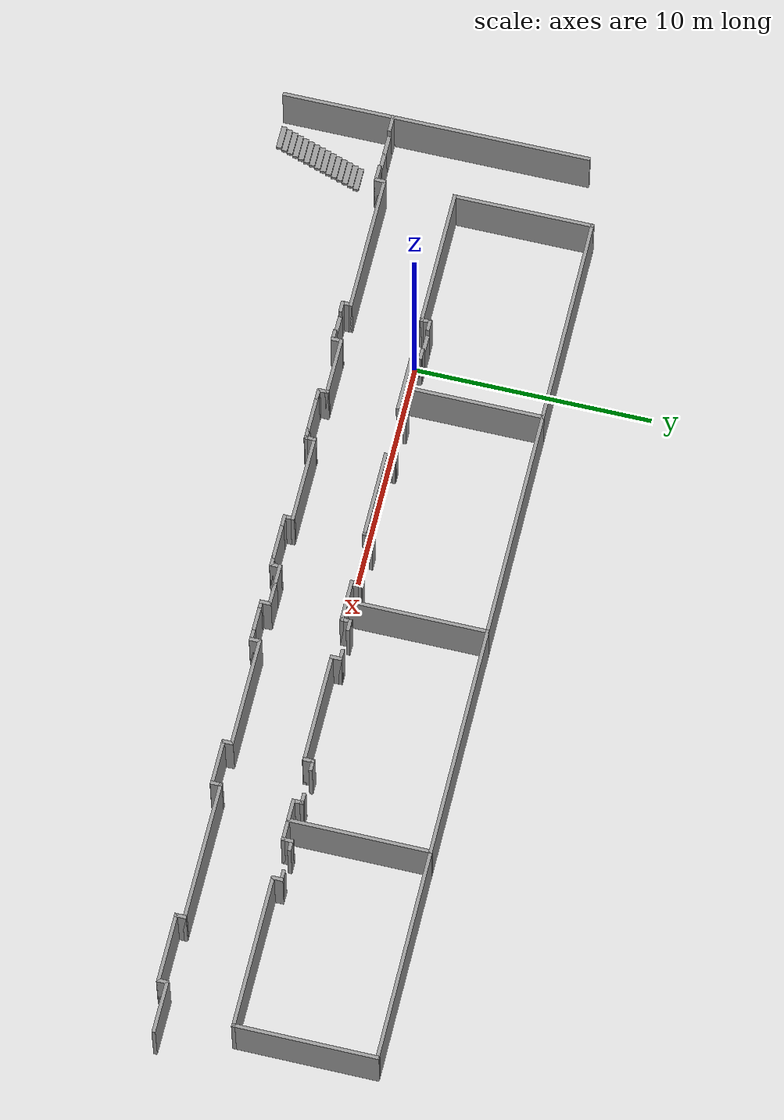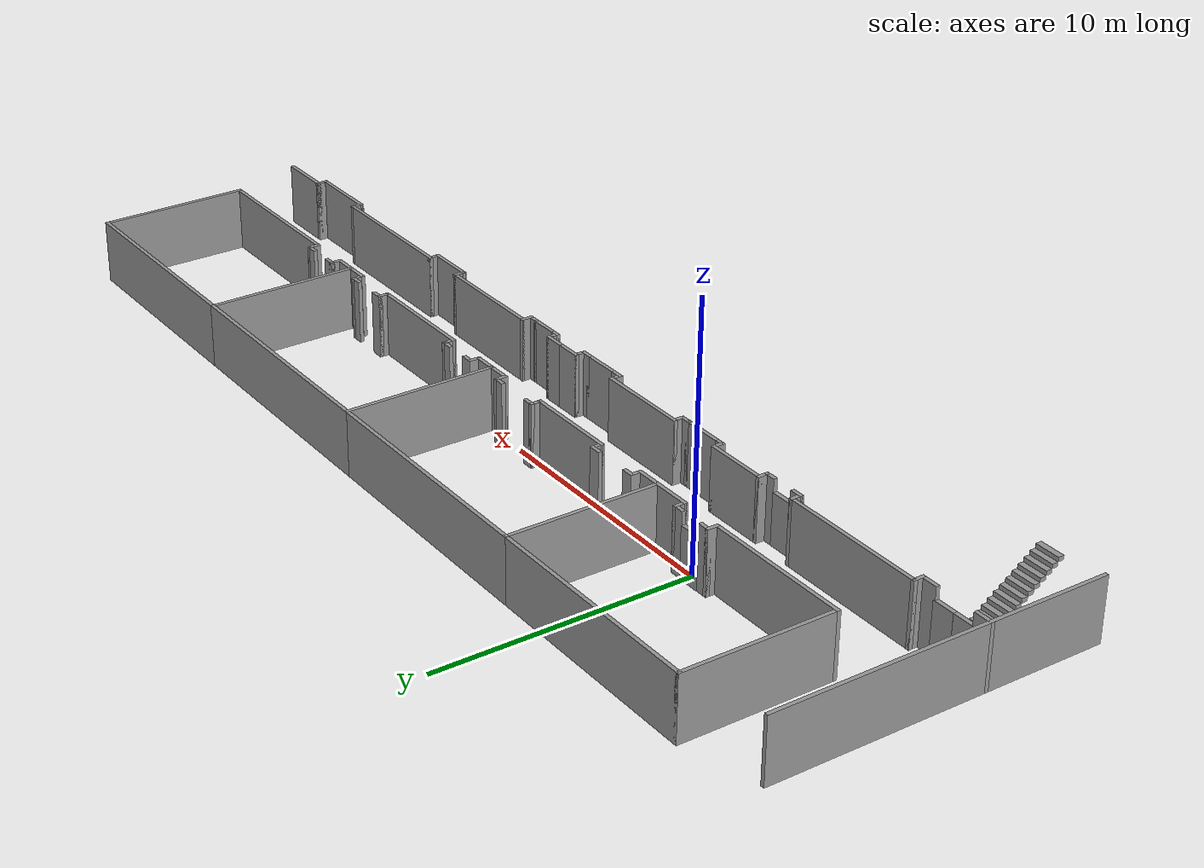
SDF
<sdf version="1.6">
 <model name="corridor">
  <pose>10.825 -1.075 0 0 -0 0</pose>
  <link name="Door_1">
   <collision name="Door_1_Collision">
    <geometry><box><size>0.9 0.17 2</size></box></geometry>
    <pose>0 0 1 0 -0 0</pose>
   </collision>
   <visual name="Door_1_Visual">
    <pose>0 0 1 0 -0 0</pose>
    <geometry><box><size>0.9 0.17 2</size></box></geometry>
    <material>
     <script><uri>file://media/materials/scripts/gazebo.material</uri><name>Gazebo/Grey</name></script>
    </material>
   </visual>
   <pose>-18.8694 -2.273 0 0 -0 0</pose>
  </link>
  <link name="Door_4">
   <collision name="Door_4_Collision">
    <geometry><box><size>0.9 0.17 2</size></box></geometry>
    <pose>0 0 1 0 -0 0</pose>
   </collision>
   <visual name="Door_4_Visual">
    <pose>0 0 1 0 -0 0</pose>
    <geometry><box><size>0.9 0.17 2</size></box></geometry>
    <material>
     <script><uri>file://media/materials/scripts/gazebo.material</uri><name>Gazebo/Grey</name></script>
    </material>
   </visual>
   <pose>-11.125 1.425 0 0 -0 3.14042</pose>
  </link>
  <link name="Door_6">
   <collision name="Door_6_Collision">
    <geometry><box><size>0.9 0.17 2</size></box></geometry>
    <pose>0 0 1 0 -0 0</pose>
   </collision>
   <visual name="Door_6_Visual">
    <pose>0 0 1 0 -0 0</pose>
    <geometry><box><size>0.9 0.17 2</size></box></geometry>
    <material>
     <script><uri>file://media/materials/scripts/gazebo.material</uri><name>Gazebo/Grey</name></script>
    </material>
   </visual>
   <pose>-19.7205 -2.27816 0 0 -0 0</pose>
  </link>
  <link name="Door_7">
   <collision name="Door_7_Collision">
    <geometry><box><size>0.9 0.17 2</size></box></geometry>
    <pose>0 0 1 0 -0 0</pose>
   </collision>
   <visual name="Door_7_Visual">
    <pose>0 0 1 0 -0 0</pose>
    <geometry><box><size>0.9 0.17 2</size></box></geometry>
    <material>
     <script><uri>file://media/materials/scripts/gazebo.material</uri><name>Gazebo/Grey</name></script>
    </material>
   </visual>
   <pose>-11.125 -2.279 0 0 -0 0</pose>
  </link>
  <link name="Stairs_1">
   <visual name="Stairs_1_Visual_0">
    <pose>-18.825 -3.29167 0.083333 0 -0 0</pose>
    <geometry><box><size>1 0.233333 0.166667</size></box></geometry>
    <material>
     <script><uri>file://media/materials/scripts/gazebo.material</uri><name>Gazebo/Grey</name></script>
     <ambient>1 1 1 1</ambient>
    </material>
    <meta><layer>0</layer></meta>
   </visual>
   <collision name="Stairs_1_Collision_0">
    <geometry><box><size>1 0.233333 0.166667</size></box></geometry>
    <pose>-18.825 -3.29167 0.083333 0 -0 0</pose>
   </collision>
   <visual name="Stairs_1_Visual_1">
    <pose>-18.825 -3.525 0.25 0 -0 0</pose>
    <geometry><box><size>1 0.233333 0.166667</size></box></geometry>
    <material>
     <script><uri>file://media/materials/scripts/gazebo.material</uri><name>Gazebo/Grey</name></script>
     <ambient>1 1 1 1</ambient>
    </material>
    <meta><layer>0</layer></meta>
   </visual>
   <collision name="Stairs_1_Collision_1">
    <geometry><box><size>1 0.233333 0.166667</size></box></geometry>
    <pose>-18.825 -3.525 0.25 0 -0 0</pose>
   </collision>
   <visual name="Stairs_1_Visual_2">
    <pose>-18.825 -3.75833 0.416667 0 -0 0</pose>
    <geometry><box><size>1 0.233333 0.166667</size></box></geometry>
    <material>
     <script><uri>file://media/materials/scripts/gazebo.material</uri><name>Gazebo/Grey</name></script>
     <ambient>1 1 1 1</ambient>
    </material>
    <meta><layer>0</layer></meta>
   </visual>
   <collision name="Stairs_1_Collision_2">
    <geometry><box><size>1 0.233333 0.166667</size></box></geometry>
    <pose>-18.825 -3.75833 0.416667 0 -0 0</pose>
   </collision>
   <visual name="Stairs_1_Visual_3">
    <pose>-18.825 -3.99167 0.583333 0 -0 0</pose>
    <geometry><box><size>1 0.233333 0.166667</size></box></geometry>
    <material>
     <script><uri>file://media/materials/scripts/gazebo.material</uri><name>Gazebo/Grey</name></script>
     <ambient>1 1 1 1</ambient>
    </material>
    <meta><layer>0</layer></meta>
   </visual>
   <collision name="Stairs_1_Collision_3">
    <geometry><box><size>1 0.233333 0.166667</size></box></geometry>
    <pose>-18.825 -3.99167 0.583333 0 -0 0</pose>
   </collision>
   <visual name="Stairs_1_Visual_4">
    <pose>-18.825 -4.225 0.75 0 -0 0</pose>
    <geometry><box><size>1 0.233333 0.166667</size></box></geometry>
    <material>
     <script><uri>file://media/materials/scripts/gazebo.material</uri><name>Gazebo/Grey</name></script>
     <ambient>1 1 1 1</ambient>
    </material>
    <meta><layer>0</layer></meta>
   </visual>
   <collision name="Stairs_1_Collision_4">
    <geometry><box><size>1 0.233333 0.166667</size></box></geometry>
    <pose>-18.825 -4.225 0.75 0 -0 0</pose>
   </collision>
   <visual name="Stairs_1_Visual_5">
    <pose>-18.825 -4.45833 0.916667 0 -0 0</pose>
    <geometry><box><size>1 0.233333 0.166667</size></box></geometry>
    <material>
     <script><uri>file://media/materials/scripts/gazebo.material</uri><name>Gazebo/Grey</name></script>
     <ambient>1 1 1 1</ambient>
    </material>
    <meta><layer>0</layer></meta>
   </visual>
   <collision name="Stairs_1_Collision_5">
    <geometry><box><size>1 0.233333 0.166667</size></box></geometry>
    <pose>-18.825 -4.45833 0.916667 0 -0 0</pose>
   </collision>
   <visual name="Stairs_1_Visual_6">
    <pose>-18.825 -4.69167 1.08333 0 -0 0</pose>
    <geometry><box><size>1 0.233333 0.166667</size></box></geometry>
    <material>
     <script><uri>file://media/materials/scripts/gazebo.material</uri><name>Gazebo/Grey</name></script>
     <ambient>1 1 1 1</ambient>
    </material>
    <meta><layer>0</layer></meta>
   </visual>
   <collision name="Stairs_1_Collision_6">
    <geometry><box><size>1 0.233333 0.166667</size></box></geometry>
    <pose>-18.825 -4.69167 1.08333 0 -0 0</pose>
   </collision>
   <visual name="Stairs_1_Visual_7">
    <pose>-18.825 -4.925 1.25 0 -0 0</pose>
    <geometry><box><size>1 0.233333 0.166667</size></box></geometry>
    <material>
     <script><uri>file://media/materials/scripts/gazebo.material</uri><name>Gazebo/Grey</name></script>
     <ambient>1 1 1 1</ambient>
    </material>
    <meta><layer>0</layer></meta>
   </visual>
   <collision name="Stairs_1_Collision_7">
    <geometry><box><size>1 0.233333 0.166667</size></box></geometry>
    <pose>-18.825 -4.925 1.25 0 -0 0</pose>
   </collision>
   <visual name="Stairs_1_Visual_8">
    <pose>-18.825 -5.15833 1.41667 0 -0 0</pose>
    <geometry><box><size>1 0.233333 0.166667</size></box></geometry>
    <material>
     <script><uri>file://media/materials/scripts/gazebo.material</uri><name>Gazebo/Grey</name></script>
     <ambient>1 1 1 1</ambient>
    </material>
    <meta><layer>0</layer></meta>
   </visual>
   <collision name="Stairs_1_Collision_8">
    <geometry><box><size>1 0.233333 0.166667</size></box></geometry>
    <pose>-18.825 -5.15833 1.41667 0 -0 0</pose>
   </collision>
   <visual name="Stairs_1_Visual_9">
    <pose>-18.825 -5.39167 1.58333 0 -0 0</pose>
    <geometry><box><size>1 0.233333 0.166667</size></box></geometry>
    <material>
     <script><uri>file://media/materials/scripts/gazebo.material</uri><name>Gazebo/Grey</name></script>
     <ambient>1 1 1 1</ambient>
    </material>
    <meta><layer>0</layer></meta>
   </visual>
   <collision name="Stairs_1_Collision_9">
    <geometry><box><size>1 0.233333 0.166667</size></box></geometry>
    <pose>-18.825 -5.39167 1.58333 0 -0 0</pose>
   </collision>
   <visual name="Stairs_1_Visual_10">
    <pose>-18.825 -5.625 1.75 0 -0 0</pose>
    <geometry><box><size>1 0.233333 0.166667</size></box></geometry>
    <material>
     <script><uri>file://media/materials/scripts/gazebo.material</uri><name>Gazebo/Grey</name></script>
     <ambient>1 1 1 1</ambient>
    </material>
    <meta><layer>0</layer></meta>
   </visual>
   <collision name="Stairs_1_Collision_10">
    <geometry><box><size>1 0.233333 0.166667</size></box></geometry>
    <pose>-18.825 -5.625 1.75 0 -0 0</pose>
   </collision>
   <visual name="Stairs_1_Visual_11">
    <pose>-18.825 -5.85833 1.91667 0 -0 0</pose>
    <geometry><box><size>1 0.233333 0.166667</size></box></geometry>
    <material>
     <script><uri>file://media/materials/scripts/gazebo.material</uri><name>Gazebo/Grey</name></script>
     <ambient>1 1 1 1</ambient>
    </material>
    <meta><layer>0</layer></meta>
   </visual>
   <collision name="Stairs_1_Collision_11">
    <geometry><box><size>1 0.233333 0.166667</size></box></geometry>
    <pose>-18.825 -5.85833 1.91667 0 -0 0</pose>
   </collision>
   <visual name="Stairs_1_Visual_12">
    <pose>-18.825 -6.09167 2.08333 0 -0 0</pose>
    <geometry><box><size>1 0.233333 0.166667</size></box></geometry>
    <material>
     <script><uri>file://media/materials/scripts/gazebo.material</uri><name>Gazebo/Grey</name></script>
     <ambient>1 1 1 1</ambient>
    </material>
    <meta><layer>0</layer></meta>
   </visual>
   <collision name="Stairs_1_Collision_12">
    <geometry><box><size>1 0.233333 0.166667</size></box></geometry>
    <pose>-18.825 -6.09167 2.08333 0 -0 0</pose>
   </collision>
   <visual name="Stairs_1_Visual_13">
    <pose>-18.825 -6.325 2.25 0 -0 0</pose>
    <geometry><box><size>1 0.233333 0.166667</size></box></geometry>
    <material>
     <script><uri>file://media/materials/scripts/gazebo.material</uri><name>Gazebo/Grey</name></script>
     <ambient>1 1 1 1</ambient>
    </material>
    <meta><layer>0</layer></meta>
   </visual>
   <collision name="Stairs_1_Collision_13">
    <geometry><box><size>1 0.233333 0.166667</size></box></geometry>
    <pose>-18.825 -6.325 2.25 0 -0 0</pose>
   </collision>
   <visual name="Stairs_1_Visual_14">
    <pose>-18.825 -6.55833 2.41667 0 -0 0</pose>
    <geometry><box><size>1 0.233333 0.166667</size></box></geometry>
    <material>
     <script><uri>file://media/materials/scripts/gazebo.material</uri><name>Gazebo/Grey</name></script>
     <ambient>1 1 1 1</ambient>
    </material>
    <meta><layer>0</layer></meta>
   </visual>
   <collision name="Stairs_1_Collision_14">
    <geometry><box><size>1 0.233333 0.166667</size></box></geometry>
    <pose>-18.825 -6.55833 2.41667 0 -0 0</pose>
   </collision>
  </link>
  <link name="Wall_0">
   <collision name="Wall_0_Collision">
    <geometry><box><size>6 0.15 2.5</size></box></geometry>
    <pose>0 0 1.25 0 -0 0</pose>
   </collision>
   <visual name="Wall_0_Visual">
    <pose>0 0 1.25 0 -0 0</pose>
    <geometry><box><size>6 0.15 2.5</size></box></geometry>
    <material>
     <script><uri>file://media/materials/scripts/gazebo.material</uri><name>Gazebo/Grey</name></script>
     <ambient>1 1 1 1</ambient>
    </material>
    <meta><layer>0</layer></meta>
   </visual>
   <pose>-14.9 1.075 0 0 -0 3.14159</pose>
  </link>
  <link name="Wall_100">
   <collision name="Wall_100_Collision">
    <geometry><box><size>0.5 0.15 2.5</size></box></geometry>
    <pose>0 0 1.25 0 -0 0</pose>
   </collision>
   <visual name="Wall_100_Visual">
    <pose>0 0 1.25 0 -0 0</pose>
    <geometry><box><size>0.5 0.15 2.5</size></box></geometry>
    <material>
     <script><uri>file://media/materials/scripts/gazebo.material</uri><name>Gazebo/Grey</name></script>
     <ambient>1 1 1 1</ambient>
    </material>
    <meta><layer>0</layer></meta>
   </visual>
   <pose>-1.85 -2.275 0 0 -0 0</pose>
  </link>
  <link name="Wall_102">
   <collision name="Wall_102_Collision">
    <geometry><box><size>0.5 0.15 2.5</size></box></geometry>
    <pose>0 0 1.25 0 -0 0</pose>
   </collision>
   <visual name="Wall_102_Visual">
    <pose>0 0 1.25 0 -0 0</pose>
    <geometry><box><size>0.5 0.15 2.5</size></box></geometry>
    <material>
     <script><uri>file://media/materials/scripts/gazebo.material</uri><name>Gazebo/Grey</name></script>
     <ambient>1 1 1 1</ambient>
    </material>
    <meta><layer>0</layer></meta>
   </visual>
   <pose>0 -2.275 0 0 -0 3.14159</pose>
  </link>
  <link name="Wall_104">
   <collision name="Wall_104_Collision">
    <geometry><box><size>0.5 0.15 2.5</size></box></geometry>
    <pose>0 0 1.25 0 -0 0</pose>
   </collision>
   <visual name="Wall_104_Visual">
    <pose>0 0 1.25 0 -0 0</pose>
    <geometry><box><size>0.5 0.15 2.5</size></box></geometry>
    <material>
     <script><uri>file://media/materials/scripts/gazebo.material</uri><name>Gazebo/Grey</name></script>
     <ambient>1 1 1 1</ambient>
    </material>
    <meta><layer>0</layer></meta>
   </visual>
   <pose>0.175 -2.1 0 0 -0 1.5708</pose>
  </link>
  <link name="Wall_105">
   <collision name="Wall_105_Collision">
    <geometry><box><size>1 0.15 2.5</size></box></geometry>
    <pose>0 0 1.25 0 -0 0</pose>
   </collision>
   <visual name="Wall_105_Visual">
    <pose>0 0 1.25 0 -0 0</pose>
    <geometry><box><size>1 0.15 2.5</size></box></geometry>
    <material>
     <script><uri>file://media/materials/scripts/gazebo.material</uri><name>Gazebo/Grey</name></script>
     <ambient>1 1 1 1</ambient>
    </material>
    <meta><layer>0</layer></meta>
   </visual>
   <pose>0.6 -1.925 0 0 -0 0</pose>
  </link>
  <link name="Wall_11">
   <collision name="Wall_11_Collision">
    <geometry><box><size>0.75 0.15 2.5</size></box></geometry>
    <pose>0 0 1.25 0 -0 0</pose>
   </collision>
   <visual name="Wall_11_Visual">
    <pose>0 0 1.25 0 -0 0</pose>
    <geometry><box><size>0.75 0.15 2.5</size></box></geometry>
    <material>
     <script><uri>file://media/materials/scripts/gazebo.material</uri><name>Gazebo/Grey</name></script>
     <ambient>1 1 1 1</ambient>
    </material>
    <meta><layer>0</layer></meta>
   </visual>
   <pose>-18.125 -2.275 0 0 -0 3.14159</pose>
  </link>
  <link name="Wall_113">
   <collision name="Wall_113_Collision">
    <geometry><box><size>10 0.15 2.5</size></box></geometry>
    <pose>0 0 1.25 0 -0 0</pose>
   </collision>
   <visual name="Wall_113_Visual">
    <pose>0 0 1.25 0 -0 0</pose>
    <geometry><box><size>10 0.15 2.5</size></box></geometry>
    <material>
     <script><uri>file://media/materials/scripts/gazebo.material</uri><name>Gazebo/Grey</name></script>
     <ambient>1 1 1 1</ambient>
    </material>
    <meta><layer>0</layer></meta>
   </visual>
   <pose>5.95 6.925 0 0 -0 0</pose>
  </link>
  <link name="Wall_115">
   <collision name="Wall_115_Collision">
    <geometry><box><size>6 0.15 2.5</size></box></geometry>
    <pose>0 0 1.25 0 -0 0</pose>
   </collision>
   <visual name="Wall_115_Visual">
    <pose>0 0 1.25 0 -0 0</pose>
    <geometry><box><size>6 0.15 2.5</size></box></geometry>
    <material>
     <script><uri>file://media/materials/scripts/gazebo.material</uri><name>Gazebo/Grey</name></script>
     <ambient>1 1 1 1</ambient>
    </material>
    <meta><layer>0</layer></meta>
   </visual>
   <pose>10.875 4 0 0 0 -1.5708</pose>
  </link>
  <link name="Wall_117">
   <collision name="Wall_117_Collision">
    <geometry><box><size>1 0.15 2.5</size></box></geometry>
    <pose>0 0 1.25 0 -0 0</pose>
   </collision>
   <visual name="Wall_117_Visual">
    <pose>0 0 1.25 0 -0 0</pose>
    <geometry><box><size>1 0.15 2.5</size></box></geometry>
    <material>
     <script><uri>file://media/materials/scripts/gazebo.material</uri><name>Gazebo/Grey</name></script>
     <ambient>1 1 1 1</ambient>
    </material>
    <meta><layer>0</layer></meta>
   </visual>
   <pose>1.45 1.075 0 0 -0 0</pose>
  </link>
  <link name="Wall_119">
   <collision name="Wall_119_Collision">
    <geometry><box><size>0.5 0.15 2.5</size></box></geometry>
    <pose>0 0 1.25 0 -0 0</pose>
   </collision>
   <visual name="Wall_119_Visual">
    <pose>0 0 1.25 0 -0 0</pose>
    <geometry><box><size>0.5 0.15 2.5</size></box></geometry>
    <material>
     <script><uri>file://media/materials/scripts/gazebo.material</uri><name>Gazebo/Grey</name></script>
     <ambient>1 1 1 1</ambient>
    </material>
    <meta><layer>0</layer></meta>
   </visual>
   <pose>1.875 1.25 0 0 -0 1.5708</pose>
  </link>
  <link name="Wall_120">
   <collision name="Wall_120_Collision">
    <geometry><box><size>0.5 0.15 2.5</size></box></geometry>
    <pose>0 0 1.25 0 -0 0</pose>
   </collision>
   <visual name="Wall_120_Visual">
    <pose>0 0 1.25 0 -0 0</pose>
    <geometry><box><size>0.5 0.15 2.5</size></box></geometry>
    <material>
     <script><uri>file://media/materials/scripts/gazebo.material</uri><name>Gazebo/Grey</name></script>
     <ambient>1 1 1 1</ambient>
    </material>
    <meta><layer>0</layer></meta>
   </visual>
   <pose>2.05 1.425 0 0 -0 0</pose>
  </link>
  <link name="Wall_122">
   <collision name="Wall_122_Collision">
    <geometry><box><size>0.5 0.15 2.5</size></box></geometry>
    <pose>0 0 1.25 0 -0 0</pose>
   </collision>
   <visual name="Wall_122_Visual">
    <pose>0 0 1.25 0 -0 0</pose>
    <geometry><box><size>0.5 0.15 2.5</size></box></geometry>
    <material>
     <script><uri>file://media/materials/scripts/gazebo.material</uri><name>Gazebo/Grey</name></script>
     <ambient>1 1 1 1</ambient>
    </material>
    <meta><layer>0</layer></meta>
   </visual>
   <pose>3.4 1.433 0 0 -0 0</pose>
  </link>
  <link name="Wall_124">
   <collision name="Wall_124_Collision">
    <geometry><box><size>0.508 0.15 2.5</size></box></geometry>
    <pose>0 0 1.25 0 -0 0</pose>
   </collision>
   <visual name="Wall_124_Visual">
    <pose>0 0 1.25 0 -0 0</pose>
    <geometry><box><size>0.508 0.15 2.5</size></box></geometry>
    <material>
     <script><uri>file://media/materials/scripts/gazebo.material</uri><name>Gazebo/Grey</name></script>
     <ambient>1 1 1 1</ambient>
    </material>
    <meta><layer>0</layer></meta>
   </visual>
   <pose>3.575 1.254 0 0 0 -1.5708</pose>
  </link>
  <link name="Wall_125">
   <collision name="Wall_125_Collision">
    <geometry><box><size>4.75 0.15 2.5</size></box></geometry>
    <pose>0 0 1.25 0 -0 0</pose>
   </collision>
   <visual name="Wall_125_Visual">
    <pose>0 0 1.25 0 -0 0</pose>
    <geometry><box><size>4.75 0.15 2.5</size></box></geometry>
    <material>
     <script><uri>file://media/materials/scripts/gazebo.material</uri><name>Gazebo/Grey</name></script>
     <ambient>1 1 1 1</ambient>
    </material>
    <meta><layer>0</layer></meta>
   </visual>
   <pose>5.875 1.075 0 0 -0 0</pose>
  </link>
  <link name="Wall_127">
   <collision name="Wall_127_Collision">
    <geometry><box><size>1 0.15 2.5</size></box></geometry>
    <pose>0 0 1.25 0 -0 0</pose>
   </collision>
   <visual name="Wall_127_Visual">
    <pose>0 0 1.25 0 -0 0</pose>
    <geometry><box><size>1 0.15 2.5</size></box></geometry>
    <material>
     <script><uri>file://media/materials/scripts/gazebo.material</uri><name>Gazebo/Grey</name></script>
     <ambient>1 1 1 1</ambient>
    </material>
    <meta><layer>0</layer></meta>
   </visual>
   <pose>10.45 1.075 0 0 -0 3.14159</pose>
  </link>
  <link name="Wall_13">
   <collision name="Wall_13_Collision">
    <geometry><box><size>0.75 0.15 2.5</size></box></geometry>
    <pose>0 0 1.25 0 -0 0</pose>
   </collision>
   <visual name="Wall_13_Visual">
    <pose>0 0 1.25 0 -0 0</pose>
    <geometry><box><size>0.75 0.15 2.5</size></box></geometry>
    <material>
     <script><uri>file://media/materials/scripts/gazebo.material</uri><name>Gazebo/Grey</name></script>
     <ambient>1 1 1 1</ambient>
    </material>
    <meta><layer>0</layer></meta>
   </visual>
   <pose>-20.525 -2.275 0 0 -0 0</pose>
  </link>
  <link name="Wall_131">
   <collision name="Wall_131_Collision">
    <geometry><box><size>0.5 0.15 2.5</size></box></geometry>
    <pose>0 0 1.25 0 -0 0</pose>
   </collision>
   <visual name="Wall_131_Visual">
    <pose>0 0 1.25 0 -0 0</pose>
    <geometry><box><size>0.5 0.15 2.5</size></box></geometry>
    <material>
     <script><uri>file://media/materials/scripts/gazebo.material</uri><name>Gazebo/Grey</name></script>
     <ambient>1 1 1 1</ambient>
    </material>
    <meta><layer>0</layer></meta>
   </visual>
   <pose>10.025 1.25 0 0 -0 1.5708</pose>
  </link>
  <link name="Wall_132">
   <collision name="Wall_132_Collision">
    <geometry><box><size>0.5 0.15 2.5</size></box></geometry>
    <pose>0 0 1.25 0 -0 0</pose>
   </collision>
   <visual name="Wall_132_Visual">
    <pose>0 0 1.25 0 -0 0</pose>
    <geometry><box><size>0.5 0.15 2.5</size></box></geometry>
    <material>
     <script><uri>file://media/materials/scripts/gazebo.material</uri><name>Gazebo/Grey</name></script>
     <ambient>1 1 1 1</ambient>
    </material>
    <meta><layer>0</layer></meta>
   </visual>
   <pose>9.85 1.425 0 0 -0 3.14159</pose>
  </link>
  <link name="Wall_134">
   <collision name="Wall_134_Collision">
    <geometry><box><size>0.5 0.15 2.5</size></box></geometry>
    <pose>0 0 1.25 0 -0 0</pose>
   </collision>
   <visual name="Wall_134_Visual">
    <pose>0 0 1.25 0 -0 0</pose>
    <geometry><box><size>0.5 0.15 2.5</size></box></geometry>
    <material>
     <script><uri>file://media/materials/scripts/gazebo.material</uri><name>Gazebo/Grey</name></script>
     <ambient>1 1 1 1</ambient>
    </material>
    <meta><layer>0</layer></meta>
   </visual>
   <pose>8.35 1.425 0 0 -0 3.14159</pose>
  </link>
  <link name="Wall_138">
   <collision name="Wall_138_Collision">
    <geometry><box><size>1 0.15 2.5</size></box></geometry>
    <pose>0 0 1.25 0 -0 0</pose>
   </collision>
   <visual name="Wall_138_Visual">
    <pose>0 0 1.25 0 -0 0</pose>
    <geometry><box><size>1 0.15 2.5</size></box></geometry>
    <material>
     <script><uri>file://media/materials/scripts/gazebo.material</uri><name>Gazebo/Grey</name></script>
     <ambient>1 1 1 1</ambient>
    </material>
    <meta><layer>0</layer></meta>
   </visual>
   <pose>1.45 -1.925 0 0 -0 0</pose>
  </link>
  <link name="Wall_139">
   <collision name="Wall_139_Collision">
    <geometry><box><size>0.5 0.15 2.5</size></box></geometry>
    <pose>0 0 1.25 0 -0 0</pose>
   </collision>
   <visual name="Wall_139_Visual">
    <pose>0 0 1.25 0 -0 0</pose>
    <geometry><box><size>0.5 0.15 2.5</size></box></geometry>
    <material>
     <script><uri>file://media/materials/scripts/gazebo.material</uri><name>Gazebo/Grey</name></script>
     <ambient>1 1 1 1</ambient>
    </material>
    <meta><layer>0</layer></meta>
   </visual>
   <pose>1.875 -2.1 0 0 0 -1.5708</pose>
  </link>
  <link name="Wall_140">
   <collision name="Wall_140_Collision">
    <geometry><box><size>0.5 0.15 2.5</size></box></geometry>
    <pose>0 0 1.25 0 -0 0</pose>
   </collision>
   <visual name="Wall_140_Visual">
    <pose>0 0 1.25 0 -0 0</pose>
    <geometry><box><size>0.5 0.15 2.5</size></box></geometry>
    <material>
     <script><uri>file://media/materials/scripts/gazebo.material</uri><name>Gazebo/Grey</name></script>
     <ambient>1 1 1 1</ambient>
    </material>
    <meta><layer>0</layer></meta>
   </visual>
   <pose>2.05 -2.275 0 0 -0 0</pose>
  </link>
  <link name="Wall_142">
   <collision name="Wall_142_Collision">
    <geometry><box><size>0.5 0.15 2.5</size></box></geometry>
    <pose>0 0 1.25 0 -0 0</pose>
   </collision>
   <visual name="Wall_142_Visual">
    <pose>0 0 1.25 0 -0 0</pose>
    <geometry><box><size>0.5 0.15 2.5</size></box></geometry>
    <material>
     <script><uri>file://media/materials/scripts/gazebo.material</uri><name>Gazebo/Grey</name></script>
     <ambient>1 1 1 1</ambient>
    </material>
    <meta><layer>0</layer></meta>
   </visual>
   <pose>8.175 1.25 0 0 0 -1.5708</pose>
  </link>
  <link name="Wall_147">
   <collision name="Wall_147_Collision">
    <geometry><box><size>4.75 0.15 2.5</size></box></geometry>
    <pose>0 0 1.25 0 -0 0</pose>
   </collision>
   <visual name="Wall_147_Visual">
    <pose>0 0 1.25 0 -0 0</pose>
    <geometry><box><size>4.75 0.15 2.5</size></box></geometry>
    <material>
     <script><uri>file://media/materials/scripts/gazebo.material</uri><name>Gazebo/Grey</name></script>
     <ambient>1 1 1 1</ambient>
    </material>
    <meta><layer>0</layer></meta>
   </visual>
   <pose>5.875 -1.925 0 0 -0 0</pose>
  </link>
  <link name="Wall_150">
   <collision name="Wall_150_Collision">
    <geometry><box><size>0.5 0.15 2.5</size></box></geometry>
    <pose>0 0 1.25 0 -0 0</pose>
   </collision>
   <visual name="Wall_150_Visual">
    <pose>0 0 1.25 0 -0 0</pose>
    <geometry><box><size>0.5 0.15 2.5</size></box></geometry>
    <material>
     <script><uri>file://media/materials/scripts/gazebo.material</uri><name>Gazebo/Grey</name></script>
     <ambient>1 1 1 1</ambient>
    </material>
    <meta><layer>0</layer></meta>
   </visual>
   <pose>3.575 -2.1 0 0 0 -1.5708</pose>
  </link>
  <link name="Wall_151">
   <collision name="Wall_151_Collision">
    <geometry><box><size>0.5 0.15 2.5</size></box></geometry>
    <pose>0 0 1.25 0 -0 0</pose>
   </collision>
   <visual name="Wall_151_Visual">
    <pose>0 0 1.25 0 -0 0</pose>
    <geometry><box><size>0.5 0.15 2.5</size></box></geometry>
    <material>
     <script><uri>file://media/materials/scripts/gazebo.material</uri><name>Gazebo/Grey</name></script>
     <ambient>1 1 1 1</ambient>
    </material>
    <meta><layer>0</layer></meta>
   </visual>
   <pose>3.4 -2.275 0 0 -0 3.14159</pose>
  </link>
  <link name="Wall_155">
   <collision name="Wall_155_Collision">
    <geometry><box><size>1.65 0.15 2.5</size></box></geometry>
    <pose>0 0 1.25 0 -0 0</pose>
   </collision>
   <visual name="Wall_155_Visual">
    <pose>0 0 1.25 0 -0 0</pose>
    <geometry><box><size>1.65 0.15 2.5</size></box></geometry>
    <material>
     <script><uri>file://media/materials/scripts/gazebo.material</uri><name>Gazebo/Grey</name></script>
     <ambient>1 1 1 1</ambient>
    </material>
    <meta><layer>0</layer></meta>
   </visual>
   <pose>-6.775 -2.275 0 0 -0 0</pose>
  </link>
  <link name="Wall_157">
   <collision name="Wall_157_Collision">
    <geometry><box><size>1.65 0.15 2.5</size></box></geometry>
    <pose>0 0 1.25 0 -0 0</pose>
   </collision>
   <visual name="Wall_157_Visual">
    <pose>0 0 1.25 0 -0 0</pose>
    <geometry><box><size>1.65 0.15 2.5</size></box></geometry>
    <material>
     <script><uri>file://media/materials/scripts/gazebo.material</uri><name>Gazebo/Grey</name></script>
     <ambient>1 1 1 1</ambient>
    </material>
    <meta><layer>0</layer></meta>
   </visual>
   <pose>-0.925 -2.275 0 0 -0 0</pose>
  </link>
  <link name="Wall_159">
   <collision name="Wall_159_Collision">
    <geometry><box><size>1.15 0.15 2.5</size></box></geometry>
    <pose>0 0 1.25 0 -0 0</pose>
   </collision>
   <visual name="Wall_159_Visual">
    <pose>0 0 1.25 0 -0 0</pose>
    <geometry><box><size>1.15 0.15 2.5</size></box></geometry>
    <material>
     <script><uri>file://media/materials/scripts/gazebo.material</uri><name>Gazebo/Grey</name></script>
     <ambient>1 1 1 1</ambient>
    </material>
    <meta><layer>0</layer></meta>
   </visual>
   <pose>2.725 -2.275 0 0 -0 0</pose>
  </link>
  <link name="Wall_16">
   <collision name="Wall_16_Collision">
    <geometry><box><size>0.5 0.15 2.5</size></box></geometry>
    <pose>0 0 1.25 0 -0 0</pose>
   </collision>
   <visual name="Wall_16_Visual">
    <pose>0 0 1.25 0 -0 0</pose>
    <geometry><box><size>0.5 0.15 2.5</size></box></geometry>
    <material>
     <script><uri>file://media/materials/scripts/gazebo.material</uri><name>Gazebo/Grey</name></script>
     <ambient>1 1 1 1</ambient>
    </material>
    <meta><layer>0</layer></meta>
   </visual>
   <pose>-11.975 1.25 0 0 -0 1.5708</pose>
  </link>
  <link name="Wall_161">
   <collision name="Wall_161_Collision">
    <geometry><box><size>0.5 0.15 2.5</size></box></geometry>
    <pose>0 0 1.25 0 -0 0</pose>
   </collision>
   <visual name="Wall_161_Visual">
    <pose>0 0 1.25 0 -0 0</pose>
    <geometry><box><size>0.5 0.15 2.5</size></box></geometry>
    <material>
     <script><uri>file://media/materials/scripts/gazebo.material</uri><name>Gazebo/Grey</name></script>
     <ambient>1 1 1 1</ambient>
    </material>
    <meta><layer>0</layer></meta>
   </visual>
   <pose>8.175 -2.1 0 0 0 -1.5708</pose>
  </link>
  <link name="Wall_162">
   <collision name="Wall_162_Collision">
    <geometry><box><size>2 0.15 2.5</size></box></geometry>
    <pose>0 0 1.25 0 -0 0</pose>
   </collision>
   <visual name="Wall_162_Visual">
    <pose>0 0 1.25 0 -0 0</pose>
    <geometry><box><size>2 0.15 2.5</size></box></geometry>
    <material>
     <script><uri>file://media/materials/scripts/gazebo.material</uri><name>Gazebo/Grey</name></script>
     <ambient>1 1 1 1</ambient>
    </material>
    <meta><layer>0</layer></meta>
   </visual>
   <pose>9.1 -2.275 0 0 -0 0</pose>
  </link>
  <link name="Wall_164">
   <collision name="Wall_164_Collision">
    <geometry><box><size>0.5 0.15 2.5</size></box></geometry>
    <pose>0 0 1.25 0 -0 0</pose>
   </collision>
   <visual name="Wall_164_Visual">
    <pose>0 0 1.25 0 -0 0</pose>
    <geometry><box><size>0.5 0.15 2.5</size></box></geometry>
    <material>
     <script><uri>file://media/materials/scripts/gazebo.material</uri><name>Gazebo/Grey</name></script>
     <ambient>1 1 1 1</ambient>
    </material>
    <meta><layer>0</layer></meta>
   </visual>
   <pose>10.025 -2.1 0 0 -0 1.5708</pose>
  </link>
  <link name="Wall_165">
   <collision name="Wall_165_Collision">
    <geometry><box><size>6 0.15 2.5</size></box></geometry>
    <pose>0 0 1.25 0 -0 0</pose>
   </collision>
   <visual name="Wall_165_Visual">
    <pose>0 0 1.25 0 -0 0</pose>
    <geometry><box><size>6 0.15 2.5</size></box></geometry>
    <material>
     <script><uri>file://media/materials/scripts/gazebo.material</uri><name>Gazebo/Grey</name></script>
     <ambient>1 1 1 1</ambient>
    </material>
    <meta><layer>0</layer></meta>
   </visual>
   <pose>12.95 -1.925 0 0 -0 0</pose>
  </link>
  <link name="Wall_167">
   <collision name="Wall_167_Collision">
    <geometry><box><size>9.15 0.15 2.5</size></box></geometry>
    <pose>0 0 1.25 0 -0 0</pose>
   </collision>
   <visual name="Wall_167_Visual">
    <pose>0 0 1.25 0 -0 0</pose>
    <geometry><box><size>9.15 0.15 2.5</size></box></geometry>
    <material>
     <script><uri>file://media/materials/scripts/gazebo.material</uri><name>Gazebo/Grey</name></script>
     <ambient>1 1 1 1</ambient>
    </material>
    <meta><layer>0</layer></meta>
   </visual>
   <pose>15.375 6.925 0 0 -0 0</pose>
  </link>
  <link name="Wall_173">
   <collision name="Wall_173_Collision">
    <geometry><box><size>6 0.15 2.5</size></box></geometry>
    <pose>0 0 1.25 0 -0 0</pose>
   </collision>
   <visual name="Wall_173_Visual">
    <pose>0 0 1.25 0 -0 0</pose>
    <geometry><box><size>6 0.15 2.5</size></box></geometry>
    <material>
     <script><uri>file://media/materials/scripts/gazebo.material</uri><name>Gazebo/Grey</name></script>
     <ambient>1 1 1 1</ambient>
    </material>
    <meta><layer>0</layer></meta>
   </visual>
   <pose>19.875 4 0 0 0 -1.5708</pose>
  </link>
  <link name="Wall_175">
   <collision name="Wall_175_Collision">
    <geometry><box><size>6.5 0.15 2.5</size></box></geometry>
    <pose>0 0 1.25 0 -0 0</pose>
   </collision>
   <visual name="Wall_175_Visual">
    <pose>0 0 1.25 0 -0 0</pose>
    <geometry><box><size>6.5 0.15 2.5</size></box></geometry>
    <material>
     <script><uri>file://media/materials/scripts/gazebo.material</uri><name>Gazebo/Grey</name></script>
     <ambient>1 1 1 1</ambient>
    </material>
    <meta><layer>0</layer></meta>
   </visual>
   <pose>16.7 1.075 0 0 -0 3.14159</pose>
  </link>
  <link name="Wall_177">
   <collision name="Wall_177_Collision">
    <geometry><box><size>0.5 0.15 2.5</size></box></geometry>
    <pose>0 0 1.25 0 -0 0</pose>
   </collision>
   <visual name="Wall_177_Visual">
    <pose>0 0 1.25 0 -0 0</pose>
    <geometry><box><size>0.5 0.15 2.5</size></box></geometry>
    <material>
     <script><uri>file://media/materials/scripts/gazebo.material</uri><name>Gazebo/Grey</name></script>
     <ambient>1 1 1 1</ambient>
    </material>
    <meta><layer>0</layer></meta>
   </visual>
   <pose>15.875 -2.1 0 0 0 -1.5708</pose>
  </link>
  <link name="Wall_178">
   <collision name="Wall_178_Collision">
    <geometry><box><size>3 0.15 2.5</size></box></geometry>
    <pose>0 0 1.25 0 -0 0</pose>
   </collision>
   <visual name="Wall_178_Visual">
    <pose>0 0 1.25 0 -0 0</pose>
    <geometry><box><size>3 0.15 2.5</size></box></geometry>
    <material>
     <script><uri>file://media/materials/scripts/gazebo.material</uri><name>Gazebo/Grey</name></script>
     <ambient>1 1 1 1</ambient>
    </material>
    <meta><layer>0</layer></meta>
   </visual>
   <pose>17.3 -2.275 0 0 -0 0</pose>
  </link>
  <link name="Wall_183">
   <collision name="Wall_183_Collision">
    <geometry><box><size>0.5 0.15 2.5</size></box></geometry>
    <pose>0 0 1.25 0 -0 0</pose>
   </collision>
   <visual name="Wall_183_Visual">
    <pose>0 0 1.25 0 -0 0</pose>
    <geometry><box><size>0.5 0.15 2.5</size></box></geometry>
    <material>
     <script><uri>file://media/materials/scripts/gazebo.material</uri><name>Gazebo/Grey</name></script>
     <ambient>1 1 1 1</ambient>
    </material>
    <meta><layer>0</layer></meta>
   </visual>
   <pose>18.725 -2.1 0 0 -0 1.5708</pose>
  </link>
  <link name="Wall_185">
   <collision name="Wall_185_Collision">
    <geometry><box><size>2.25 0.15 2.5</size></box></geometry>
    <pose>0 0 1.25 0 -0 0</pose>
   </collision>
   <visual name="Wall_185_Visual">
    <pose>0 0 1.25 0 -0 0</pose>
    <geometry><box><size>2.25 0.15 2.5</size></box></geometry>
    <material>
     <script><uri>file://media/materials/scripts/gazebo.material</uri><name>Gazebo/Grey</name></script>
     <ambient>1 1 1 1</ambient>
    </material>
    <meta><layer>0</layer></meta>
   </visual>
   <pose>19.775 -1.925 0 0 -0 0</pose>
  </link>
  <link name="Wall_187">
   <collision name="Wall_187_Collision">
    <geometry><box><size>1 0.15 2.5</size></box></geometry>
    <pose>0 0 1.25 0 -0 0</pose>
   </collision>
   <visual name="Wall_187_Visual">
    <pose>0 0 1.25 0 -0 0</pose>
    <geometry><box><size>1 0.15 2.5</size></box></geometry>
    <material>
     <script><uri>file://media/materials/scripts/gazebo.material</uri><name>Gazebo/Grey</name></script>
     <ambient>1 1 1 1</ambient>
    </material>
    <meta><layer>0</layer></meta>
   </visual>
   <pose>11.3 1.075 0 0 -0 0</pose>
  </link>
  <link name="Wall_188">
   <collision name="Wall_188_Collision">
    <geometry><box><size>0.5 0.15 2.5</size></box></geometry>
    <pose>0 0 1.25 0 -0 0</pose>
   </collision>
   <visual name="Wall_188_Visual">
    <pose>0 0 1.25 0 -0 0</pose>
    <geometry><box><size>0.5 0.15 2.5</size></box></geometry>
    <material>
     <script><uri>file://media/materials/scripts/gazebo.material</uri><name>Gazebo/Grey</name></script>
     <ambient>1 1 1 1</ambient>
    </material>
    <meta><layer>0</layer></meta>
   </visual>
   <pose>11.725 1.25 0 0 -0 1.5708</pose>
  </link>
  <link name="Wall_189">
   <collision name="Wall_189_Collision">
    <geometry><box><size>0.5 0.15 2.5</size></box></geometry>
    <pose>0 0 1.25 0 -0 0</pose>
   </collision>
   <visual name="Wall_189_Visual">
    <pose>0 0 1.25 0 -0 0</pose>
    <geometry><box><size>0.5 0.15 2.5</size></box></geometry>
    <material>
     <script><uri>file://media/materials/scripts/gazebo.material</uri><name>Gazebo/Grey</name></script>
     <ambient>1 1 1 1</ambient>
    </material>
    <meta><layer>0</layer></meta>
   </visual>
   <pose>11.9 1.425 0 0 -0 0</pose>
  </link>
  <link name="Wall_19">
   <collision name="Wall_19_Collision">
    <geometry><box><size>0.5 0.15 2.5</size></box></geometry>
    <pose>0 0 1.25 0 -0 0</pose>
   </collision>
   <visual name="Wall_19_Visual">
    <pose>0 0 1.25 0 -0 0</pose>
    <geometry><box><size>0.5 0.15 2.5</size></box></geometry>
    <material>
     <script><uri>file://media/materials/scripts/gazebo.material</uri><name>Gazebo/Grey</name></script>
     <ambient>1 1 1 1</ambient>
    </material>
    <meta><layer>0</layer></meta>
   </visual>
   <pose>-11.975 -2.1 0 0 0 -1.5708</pose>
  </link>
  <link name="Wall_191">
   <collision name="Wall_191_Collision">
    <geometry><box><size>0.5 0.15 2.5</size></box></geometry>
    <pose>0 0 1.25 0 -0 0</pose>
   </collision>
   <visual name="Wall_191_Visual">
    <pose>0 0 1.25 0 -0 0</pose>
    <geometry><box><size>0.5 0.15 2.5</size></box></geometry>
    <material>
     <script><uri>file://media/materials/scripts/gazebo.material</uri><name>Gazebo/Grey</name></script>
     <ambient>1 1 1 1</ambient>
    </material>
    <meta><layer>0</layer></meta>
   </visual>
   <pose>13.25 1.425 0 0 -0 0</pose>
  </link>
  <link name="Wall_193">
   <collision name="Wall_193_Collision">
    <geometry><box><size>0.5 0.15 2.5</size></box></geometry>
    <pose>0 0 1.25 0 -0 0</pose>
   </collision>
   <visual name="Wall_193_Visual">
    <pose>0 0 1.25 0 -0 0</pose>
    <geometry><box><size>0.5 0.15 2.5</size></box></geometry>
    <material>
     <script><uri>file://media/materials/scripts/gazebo.material</uri><name>Gazebo/Grey</name></script>
     <ambient>1 1 1 1</ambient>
    </material>
    <meta><layer>0</layer></meta>
   </visual>
   <pose>13.425 1.25 0 0 0 -1.5708</pose>
  </link>
  <link name="Wall_21">
   <collision name="Wall_21_Collision">
    <geometry><box><size>0.5 0.15 2.5</size></box></geometry>
    <pose>0 0 1.25 0 -0 0</pose>
   </collision>
   <visual name="Wall_21_Visual">
    <pose>0 0 1.25 0 -0 0</pose>
    <geometry><box><size>0.5 0.15 2.5</size></box></geometry>
    <material>
     <script><uri>file://media/materials/scripts/gazebo.material</uri><name>Gazebo/Grey</name></script>
     <ambient>1 1 1 1</ambient>
    </material>
    <meta><layer>0</layer></meta>
   </visual>
   <pose>-11.8 1.425 0 0 -0 0</pose>
  </link>
  <link name="Wall_23">
   <collision name="Wall_23_Collision">
    <geometry><box><size>0.5 0.15 2.5</size></box></geometry>
    <pose>0 0 1.25 0 -0 0</pose>
   </collision>
   <visual name="Wall_23_Visual">
    <pose>0 0 1.25 0 -0 0</pose>
    <geometry><box><size>0.5 0.15 2.5</size></box></geometry>
    <material>
     <script><uri>file://media/materials/scripts/gazebo.material</uri><name>Gazebo/Grey</name></script>
     <ambient>1 1 1 1</ambient>
    </material>
    <meta><layer>0</layer></meta>
   </visual>
   <pose>-10.45 1.425 0 0 -0 0</pose>
  </link>
  <link name="Wall_24">
   <collision name="Wall_24_Collision">
    <geometry><box><size>0.5 0.15 2.5</size></box></geometry>
    <pose>0 0 1.25 0 -0 0</pose>
   </collision>
   <visual name="Wall_24_Visual">
    <pose>0 0 1.25 0 -0 0</pose>
    <geometry><box><size>0.5 0.15 2.5</size></box></geometry>
    <material>
     <script><uri>file://media/materials/scripts/gazebo.material</uri><name>Gazebo/Grey</name></script>
     <ambient>1 1 1 1</ambient>
    </material>
    <meta><layer>0</layer></meta>
   </visual>
   <pose>-10.275 1.25 0 0 0 -1.5708</pose>
  </link>
  <link name="Wall_25">
   <collision name="Wall_25_Collision">
    <geometry><box><size>2.55 0.15 2.5</size></box></geometry>
    <pose>0 0 1.25 0 -0 0</pose>
   </collision>
   <visual name="Wall_25_Visual">
    <pose>0 0 1.25 0 -0 0</pose>
    <geometry><box><size>2.55 0.15 2.5</size></box></geometry>
    <material>
     <script><uri>file://media/materials/scripts/gazebo.material</uri><name>Gazebo/Grey</name></script>
     <ambient>1 1 1 1</ambient>
    </material>
    <meta><layer>0</layer></meta>
   </visual>
   <pose>-9.075 1.075 0 0 -0 0</pose>
  </link>
  <link name="Wall_27">
   <collision name="Wall_27_Collision">
    <geometry><box><size>6 0.15 2.5</size></box></geometry>
    <pose>0 0 1.25 0 -0 0</pose>
   </collision>
   <visual name="Wall_27_Visual">
    <pose>0 0 1.25 0 -0 0</pose>
    <geometry><box><size>6 0.15 2.5</size></box></geometry>
    <material>
     <script><uri>file://media/materials/scripts/gazebo.material</uri><name>Gazebo/Grey</name></script>
     <ambient>1 1 1 1</ambient>
    </material>
    <meta><layer>0</layer></meta>
   </visual>
   <pose>-8.825 4 0 0 -0 1.5708</pose>
  </link>
  <link name="Wall_29">
   <collision name="Wall_29_Collision">
    <geometry><box><size>6 0.15 2.5</size></box></geometry>
    <pose>0 0 1.25 0 -0 0</pose>
   </collision>
   <visual name="Wall_29_Visual">
    <pose>0 0 1.25 0 -0 0</pose>
    <geometry><box><size>6 0.15 2.5</size></box></geometry>
    <material>
     <script><uri>file://media/materials/scripts/gazebo.material</uri><name>Gazebo/Grey</name></script>
     <ambient>1 1 1 1</ambient>
    </material>
    <meta><layer>0</layer></meta>
   </visual>
   <pose>-17.825 4 0 0 -0 1.5708</pose>
  </link>
  <link name="Wall_31">
   <collision name="Wall_31_Collision">
    <geometry><box><size>0.5 0.15 2.5</size></box></geometry>
    <pose>0 0 1.25 0 -0 0</pose>
   </collision>
   <visual name="Wall_31_Visual">
    <pose>0 0 1.25 0 -0 0</pose>
    <geometry><box><size>0.5 0.15 2.5</size></box></geometry>
    <material>
     <script><uri>file://media/materials/scripts/gazebo.material</uri><name>Gazebo/Grey</name></script>
     <ambient>1 1 1 1</ambient>
    </material>
    <meta><layer>0</layer></meta>
   </visual>
   <pose>-11.8 -2.275 0 0 -0 0</pose>
  </link>
  <link name="Wall_36">
   <collision name="Wall_36_Collision">
    <geometry><box><size>0.5 0.15 2.5</size></box></geometry>
    <pose>0 0 1.25 0 -0 0</pose>
   </collision>
   <visual name="Wall_36_Visual">
    <pose>0 0 1.25 0 -0 0</pose>
    <geometry><box><size>0.5 0.15 2.5</size></box></geometry>
    <material>
     <script><uri>file://media/materials/scripts/gazebo.material</uri><name>Gazebo/Grey</name></script>
     <ambient>1 1 1 1</ambient>
    </material>
    <meta><layer>0</layer></meta>
   </visual>
   <pose>-10.45 -2.275 0 0 -0 0</pose>
  </link>
  <link name="Wall_38">
   <collision name="Wall_38_Collision">
    <geometry><box><size>0.5 0.15 2.5</size></box></geometry>
    <pose>0 0 1.25 0 -0 0</pose>
   </collision>
   <visual name="Wall_38_Visual">
    <pose>0 0 1.25 0 -0 0</pose>
    <geometry><box><size>0.5 0.15 2.5</size></box></geometry>
    <material>
     <script><uri>file://media/materials/scripts/gazebo.material</uri><name>Gazebo/Grey</name></script>
     <ambient>1 1 1 1</ambient>
    </material>
    <meta><layer>0</layer></meta>
   </visual>
   <pose>-10.275 -2.1 0 0 -0 1.5708</pose>
  </link>
  <link name="Wall_39">
   <collision name="Wall_39_Collision">
    <geometry><box><size>2.55 0.15 2.5</size></box></geometry>
    <pose>0 0 1.25 0 -0 0</pose>
   </collision>
   <visual name="Wall_39_Visual">
    <pose>0 0 1.25 0 -0 0</pose>
    <geometry><box><size>2.55 0.15 2.5</size></box></geometry>
    <material>
     <script><uri>file://media/materials/scripts/gazebo.material</uri><name>Gazebo/Grey</name></script>
     <ambient>1 1 1 1</ambient>
    </material>
    <meta><layer>0</layer></meta>
   </visual>
   <pose>-9.075 -1.925 0 0 -0 0</pose>
  </link>
  <link name="Wall_4">
   <collision name="Wall_4_Collision">
    <geometry><box><size>13.15 0.15 2.5</size></box></geometry>
    <pose>0 0 1.25 0 -0 0</pose>
   </collision>
   <visual name="Wall_4_Visual">
    <pose>0 0 1.25 0 -0 0</pose>
    <geometry><box><size>13.15 0.15 2.5</size></box></geometry>
    <material>
     <script><uri>file://media/materials/scripts/gazebo.material</uri><name>Gazebo/Grey</name></script>
     <ambient>1 1 1 1</ambient>
    </material>
    <meta><layer>0</layer></meta>
   </visual>
   <pose>-20.825 -0.425 0 0 -0 1.5708</pose>
  </link>
  <link name="Wall_52">
   <collision name="Wall_52_Collision">
    <geometry><box><size>0.5 0.15 2.5</size></box></geometry>
    <pose>0 0 1.25 0 -0 0</pose>
   </collision>
   <visual name="Wall_52_Visual">
    <pose>0 0 1.25 0 -0 0</pose>
    <geometry><box><size>0.5 0.15 2.5</size></box></geometry>
    <material>
     <script><uri>file://media/materials/scripts/gazebo.material</uri><name>Gazebo/Grey</name></script>
     <ambient>1 1 1 1</ambient>
    </material>
    <meta><layer>0</layer></meta>
   </visual>
   <pose>-7.875 1.25 0 0 -0 1.5708</pose>
  </link>
  <link name="Wall_53">
   <collision name="Wall_53_Collision">
    <geometry><box><size>0.5 0.15 2.5</size></box></geometry>
    <pose>0 0 1.25 0 -0 0</pose>
   </collision>
   <visual name="Wall_53_Visual">
    <pose>0 0 1.25 0 -0 0</pose>
    <geometry><box><size>0.5 0.15 2.5</size></box></geometry>
    <material>
     <script><uri>file://media/materials/scripts/gazebo.material</uri><name>Gazebo/Grey</name></script>
     <ambient>1 1 1 1</ambient>
    </material>
    <meta><layer>0</layer></meta>
   </visual>
   <pose>-7.7 1.425 0 0 -0 0</pose>
  </link>
  <link name="Wall_56">
   <collision name="Wall_56_Collision">
    <geometry><box><size>0.5 0.15 2.5</size></box></geometry>
    <pose>0 0 1.25 0 -0 0</pose>
   </collision>
   <visual name="Wall_56_Visual">
    <pose>0 0 1.25 0 -0 0</pose>
    <geometry><box><size>0.5 0.15 2.5</size></box></geometry>
    <material>
     <script><uri>file://media/materials/scripts/gazebo.material</uri><name>Gazebo/Grey</name></script>
     <ambient>1 1 1 1</ambient>
    </material>
    <meta><layer>0</layer></meta>
   </visual>
   <pose>-5.85 1.425 0 0 -0 0</pose>
  </link>
  <link name="Wall_58">
   <collision name="Wall_58_Collision">
    <geometry><box><size>0.5 0.15 2.5</size></box></geometry>
    <pose>0 0 1.25 0 -0 0</pose>
   </collision>
   <visual name="Wall_58_Visual">
    <pose>0 0 1.25 0 -0 0</pose>
    <geometry><box><size>0.5 0.15 2.5</size></box></geometry>
    <material>
     <script><uri>file://media/materials/scripts/gazebo.material</uri><name>Gazebo/Grey</name></script>
     <ambient>1 1 1 1</ambient>
    </material>
    <meta><layer>0</layer></meta>
   </visual>
   <pose>-5.675 1.25 0 0 0 -1.5708</pose>
  </link>
  <link name="Wall_59">
   <collision name="Wall_59_Collision">
    <geometry><box><size>3.8 0.15 2.5</size></box></geometry>
    <pose>0 0 1.25 0 -0 0</pose>
   </collision>
   <visual name="Wall_59_Visual">
    <pose>0 0 1.25 0 -0 0</pose>
    <geometry><box><size>3.8 0.15 2.5</size></box></geometry>
    <material>
     <script><uri>file://media/materials/scripts/gazebo.material</uri><name>Gazebo/Grey</name></script>
     <ambient>1 1 1 1</ambient>
    </material>
    <meta><layer>0</layer></meta>
   </visual>
   <pose>-3.85 1.075 0 0 -0 0</pose>
  </link>
  <link name="Wall_66">
   <collision name="Wall_66_Collision">
    <geometry><box><size>9.15 0.15 2.5</size></box></geometry>
    <pose>0 0 1.25 0 -0 0</pose>
   </collision>
   <visual name="Wall_66_Visual">
    <pose>0 0 1.25 0 -0 0</pose>
    <geometry><box><size>9.15 0.15 2.5</size></box></geometry>
    <material>
     <script><uri>file://media/materials/scripts/gazebo.material</uri><name>Gazebo/Grey</name></script>
     <ambient>1 1 1 1</ambient>
    </material>
    <meta><layer>0</layer></meta>
   </visual>
   <pose>-13.325 6.925 0 0 -0 0</pose>
  </link>
  <link name="Wall_68">
   <collision name="Wall_68_Collision">
    <geometry><box><size>10 0.15 2.5</size></box></geometry>
    <pose>0 0 1.25 0 -0 0</pose>
   </collision>
   <visual name="Wall_68_Visual">
    <pose>0 0 1.25 0 -0 0</pose>
    <geometry><box><size>10 0.15 2.5</size></box></geometry>
    <material>
     <script><uri>file://media/materials/scripts/gazebo.material</uri><name>Gazebo/Grey</name></script>
     <ambient>1 1 1 1</ambient>
    </material>
    <meta><layer>0</layer></meta>
   </visual>
   <pose>-3.9 6.925 0 0 -0 0</pose>
  </link>
  <link name="Wall_7">
   <collision name="Wall_7_Collision">
    <geometry><box><size>6 0.15 2.5</size></box></geometry>
    <pose>0 0 1.25 0 -0 0</pose>
   </collision>
   <visual name="Wall_7_Visual">
    <pose>0 0 1.25 0 -0 0</pose>
    <geometry><box><size>6 0.15 2.5</size></box></geometry>
    <material>
     <script><uri>file://media/materials/scripts/gazebo.material</uri><name>Gazebo/Grey</name></script>
     <ambient>1 1 1 1</ambient>
    </material>
    <meta><layer>0</layer></meta>
   </visual>
   <pose>-14.9 -1.925 0 0 -0 0</pose>
  </link>
  <link name="Wall_75">
   <collision name="Wall_75_Collision">
    <geometry><box><size>6 0.15 2.5</size></box></geometry>
    <pose>0 0 1.25 0 -0 0</pose>
   </collision>
   <visual name="Wall_75_Visual">
    <pose>0 0 1.25 0 -0 0</pose>
    <geometry><box><size>6 0.15 2.5</size></box></geometry>
    <material>
     <script><uri>file://media/materials/scripts/gazebo.material</uri><name>Gazebo/Grey</name></script>
     <ambient>1 1 1 1</ambient>
    </material>
    <meta><layer>0</layer></meta>
   </visual>
   <pose>1.025 4 0 0 0 -1.5708</pose>
  </link>
  <link name="Wall_77">
   <collision name="Wall_77_Collision">
    <geometry><box><size>1 0.15 2.5</size></box></geometry>
    <pose>0 0 1.25 0 -0 0</pose>
   </collision>
   <visual name="Wall_77_Visual">
    <pose>0 0 1.25 0 -0 0</pose>
    <geometry><box><size>1 0.15 2.5</size></box></geometry>
    <material>
     <script><uri>file://media/materials/scripts/gazebo.material</uri><name>Gazebo/Grey</name></script>
     <ambient>1 1 1 1</ambient>
    </material>
    <meta><layer>0</layer></meta>
   </visual>
   <pose>0.6 1.075 0 0 -0 3.14159</pose>
  </link>
  <link name="Wall_78">
   <collision name="Wall_78_Collision">
    <geometry><box><size>0.5 0.15 2.5</size></box></geometry>
    <pose>0 0 1.25 0 -0 0</pose>
   </collision>
   <visual name="Wall_78_Visual">
    <pose>0 0 1.25 0 -0 0</pose>
    <geometry><box><size>0.5 0.15 2.5</size></box></geometry>
    <material>
     <script><uri>file://media/materials/scripts/gazebo.material</uri><name>Gazebo/Grey</name></script>
     <ambient>1 1 1 1</ambient>
    </material>
    <meta><layer>0</layer></meta>
   </visual>
   <pose>0.175 1.25 0 0 -0 1.5708</pose>
  </link>
  <link name="Wall_79">
   <collision name="Wall_79_Collision">
    <geometry><box><size>0.5 0.15 2.5</size></box></geometry>
    <pose>0 0 1.25 0 -0 0</pose>
   </collision>
   <visual name="Wall_79_Visual">
    <pose>0 0 1.25 0 -0 0</pose>
    <geometry><box><size>0.5 0.15 2.5</size></box></geometry>
    <material>
     <script><uri>file://media/materials/scripts/gazebo.material</uri><name>Gazebo/Grey</name></script>
     <ambient>1 1 1 1</ambient>
    </material>
    <meta><layer>0</layer></meta>
   </visual>
   <pose>0 1.425 0 0 -0 3.14159</pose>
  </link>
  <link name="Wall_81">
   <collision name="Wall_81_Collision">
    <geometry><box><size>0.5 0.15 2.5</size></box></geometry>
    <pose>0 0 1.25 0 -0 0</pose>
   </collision>
   <visual name="Wall_81_Visual">
    <pose>0 0 1.25 0 -0 0</pose>
    <geometry><box><size>0.5 0.15 2.5</size></box></geometry>
    <material>
     <script><uri>file://media/materials/scripts/gazebo.material</uri><name>Gazebo/Grey</name></script>
     <ambient>1 1 1 1</ambient>
    </material>
    <meta><layer>0</layer></meta>
   </visual>
   <pose>-1.85 1.425 0 0 -0 0</pose>
  </link>
  <link name="Wall_83">
   <collision name="Wall_83_Collision">
    <geometry><box><size>0.5 0.15 2.5</size></box></geometry>
    <pose>0 0 1.25 0 -0 0</pose>
   </collision>
   <visual name="Wall_83_Visual">
    <pose>0 0 1.25 0 -0 0</pose>
    <geometry><box><size>0.5 0.15 2.5</size></box></geometry>
    <material>
     <script><uri>file://media/materials/scripts/gazebo.material</uri><name>Gazebo/Grey</name></script>
     <ambient>1 1 1 1</ambient>
    </material>
    <meta><layer>0</layer></meta>
   </visual>
   <pose>-2.025 1.25 0 0 0 -1.5708</pose>
  </link>
  <link name="Wall_85">
   <collision name="Wall_85_Collision">
    <geometry><box><size>0.5 0.15 2.5</size></box></geometry>
    <pose>0 0 1.25 0 -0 0</pose>
   </collision>
   <visual name="Wall_85_Visual">
    <pose>0 0 1.25 0 -0 0</pose>
    <geometry><box><size>0.5 0.15 2.5</size></box></geometry>
    <material>
     <script><uri>file://media/materials/scripts/gazebo.material</uri><name>Gazebo/Grey</name></script>
     <ambient>1 1 1 1</ambient>
    </material>
    <meta><layer>0</layer></meta>
   </visual>
   <pose>-7.875 -2.1 0 0 0 -1.5708</pose>
  </link>
  <link name="Wall_86">
   <collision name="Wall_86_Collision">
    <geometry><box><size>0.5 0.15 2.5</size></box></geometry>
    <pose>0 0 1.25 0 -0 0</pose>
   </collision>
   <visual name="Wall_86_Visual">
    <pose>0 0 1.25 0 -0 0</pose>
    <geometry><box><size>0.5 0.15 2.5</size></box></geometry>
    <material>
     <script><uri>file://media/materials/scripts/gazebo.material</uri><name>Gazebo/Grey</name></script>
     <ambient>1 1 1 1</ambient>
    </material>
    <meta><layer>0</layer></meta>
   </visual>
   <pose>-7.7 -2.275 0 0 -0 0</pose>
  </link>
  <link name="Wall_88">
   <collision name="Wall_88_Collision">
    <geometry><box><size>0.5 0.15 2.5</size></box></geometry>
    <pose>0 0 1.25 0 -0 0</pose>
   </collision>
   <visual name="Wall_88_Visual">
    <pose>0 0 1.25 0 -0 0</pose>
    <geometry><box><size>0.5 0.15 2.5</size></box></geometry>
    <material>
     <script><uri>file://media/materials/scripts/gazebo.material</uri><name>Gazebo/Grey</name></script>
     <ambient>1 1 1 1</ambient>
    </material>
    <meta><layer>0</layer></meta>
   </visual>
   <pose>-5.85 -2.275 0 0 -0 0</pose>
  </link>
  <link name="Wall_9">
   <collision name="Wall_9_Collision">
    <geometry><box><size>0.5 0.15 2.5</size></box></geometry>
    <pose>0 0 1.25 0 -0 0</pose>
   </collision>
   <visual name="Wall_9_Visual">
    <pose>0 0 1.25 0 -0 0</pose>
    <geometry><box><size>0.5 0.15 2.5</size></box></geometry>
    <material>
     <script><uri>file://media/materials/scripts/gazebo.material</uri><name>Gazebo/Grey</name></script>
     <ambient>1 1 1 1</ambient>
    </material>
    <meta><layer>0</layer></meta>
   </visual>
   <pose>-17.825 -2.1 0 0 0 -1.5708</pose>
  </link>
  <link name="Wall_90">
   <collision name="Wall_90_Collision">
    <geometry><box><size>0.5 0.15 2.5</size></box></geometry>
    <pose>0 0 1.25 0 -0 0</pose>
   </collision>
   <visual name="Wall_90_Visual">
    <pose>0 0 1.25 0 -0 0</pose>
    <geometry><box><size>0.5 0.15 2.5</size></box></geometry>
    <material>
     <script><uri>file://media/materials/scripts/gazebo.material</uri><name>Gazebo/Grey</name></script>
     <ambient>1 1 1 1</ambient>
    </material>
    <meta><layer>0</layer></meta>
   </visual>
   <pose>-5.675 -2.1 0 0 -0 1.5708</pose>
  </link>
  <link name="Wall_91">
   <collision name="Wall_91_Collision">
    <geometry><box><size>3.8 0.15 2.5</size></box></geometry>
    <pose>0 0 1.25 0 -0 0</pose>
   </collision>
   <visual name="Wall_91_Visual">
    <pose>0 0 1.25 0 -0 0</pose>
    <geometry><box><size>3.8 0.15 2.5</size></box></geometry>
    <material>
     <script><uri>file://media/materials/scripts/gazebo.material</uri><name>Gazebo/Grey</name></script>
     <ambient>1 1 1 1</ambient>
    </material>
    <meta><layer>0</layer></meta>
   </visual>
   <pose>-3.85 -1.925 0 0 -0 0</pose>
  </link>
  <link name="Wall_99">
   <collision name="Wall_99_Collision">
    <geometry><box><size>0.5 0.15 2.5</size></box></geometry>
    <pose>0 0 1.25 0 -0 0</pose>
   </collision>
   <visual name="Wall_99_Visual">
    <pose>0 0 1.25 0 -0 0</pose>
    <geometry><box><size>0.5 0.15 2.5</size></box></geometry>
    <material>
     <script><uri>file://media/materials/scripts/gazebo.material</uri><name>Gazebo/Grey</name></script>
     <ambient>1 1 1 1</ambient>
    </material>
    <meta><layer>0</layer></meta>
   </visual>
   <pose>-2.025 -2.1 0 0 0 -1.5708</pose>
  </link>
  <static>1</static>
 </model>
</sdf>
